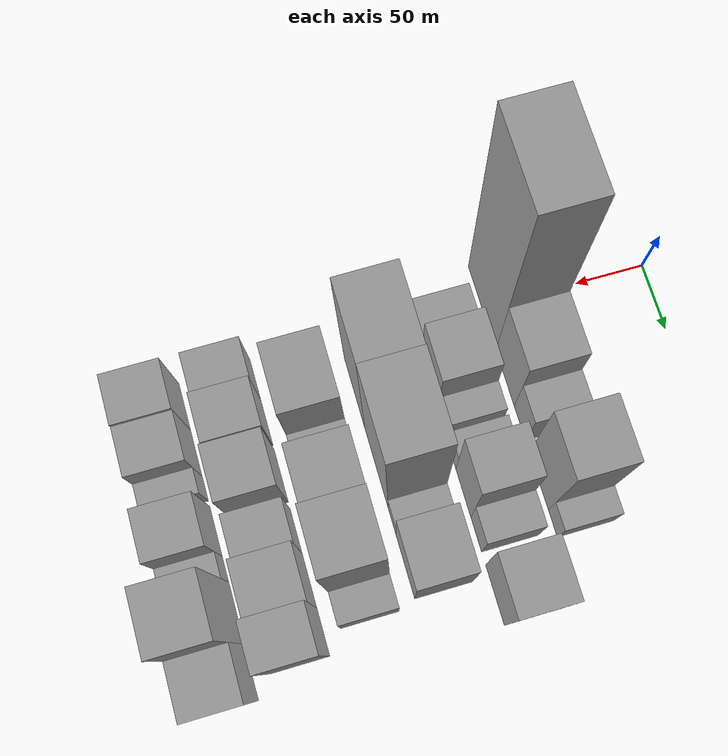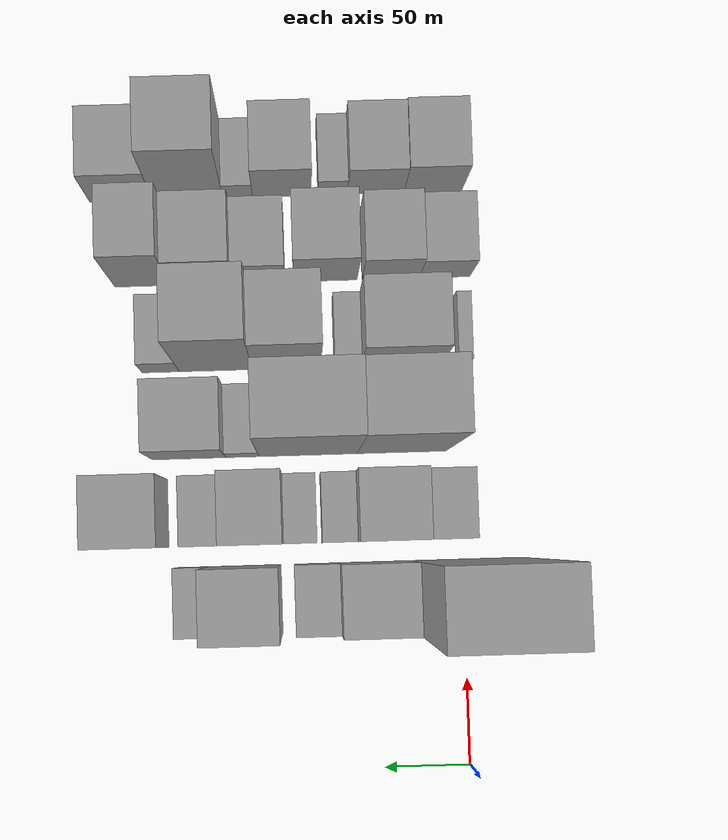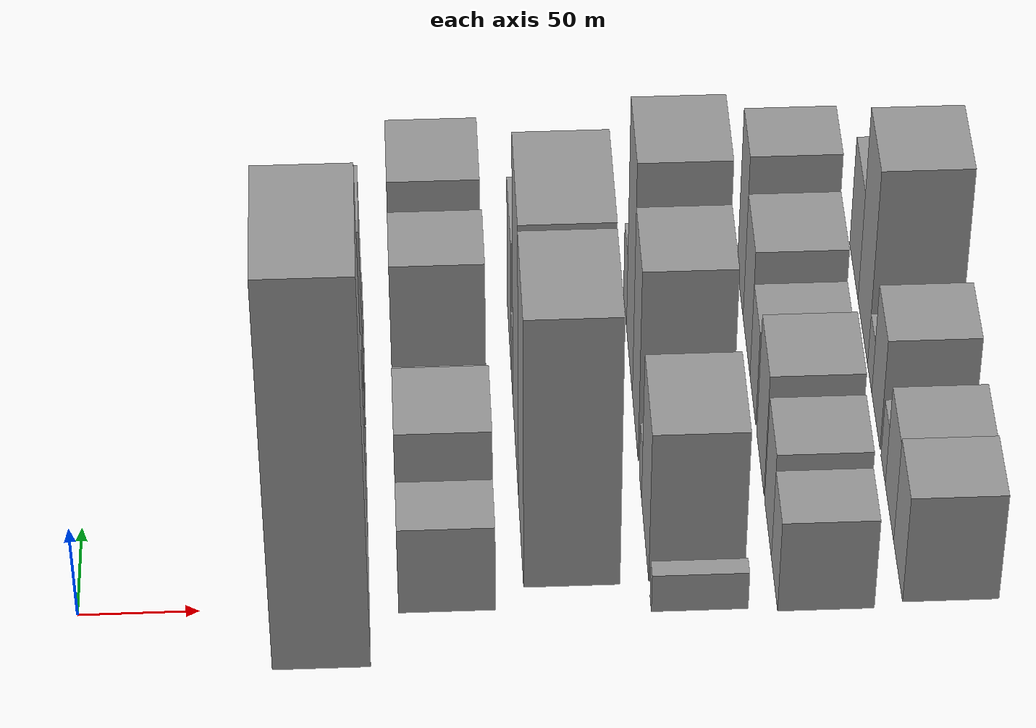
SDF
<sdf version="1.6">
 <world name="default">
  <model name="building_23">
   <static>1</static>
   <pose>100.0000 -1.6300 0 0.000000 0.000000 0.000000</pose>
   <link name="link">
    <pose>0 0 106.50 0 0 0</pose>
    <collision name="collision"><geometry><box><size>40.0000 65.4329 213.0000</size></box></geometry></collision>
    <visual name="visual">
     <cast_shadows>0</cast_shadows>
     <geometry><box><size>40.0000 65.4329 213.0000</size></box></geometry>
     <material>
      <script>
       <uri>model://grey_wall/materials/scripts</uri>
       <uri>model://grey_wall/materials/textures</uri>
       <name>vrc/grey_wall</name>
      </script>
     </material>
    </visual>
   </link>
  </model>
  <model name="building_24">
   <static>1</static>
   <pose>100.0000 52.3423 0 0.000000 0.000000 0.000000</pose>
   <link name="link">
    <pose>0 0 42.00 0 0 0</pose>
    <collision name="collision"><geometry><box><size>40.0000 42.5116 84.0000</size></box></geometry></collision>
    <visual name="visual">
     <cast_shadows>0</cast_shadows>
     <geometry><box><size>40.0000 42.5116 84.0000</size></box></geometry>
     <material>
      <script>
       <uri>model://grey_wall/materials/scripts</uri>
       <uri>model://grey_wall/materials/textures</uri>
       <name>vrc/grey_wall</name>
      </script>
     </material>
    </visual>
   </link>
  </model>
  <model name="building_25">
   <static>1</static>
   <pose>100.0000 86.3968 0 0.000000 0.000000 0.000000</pose>
   <link name="link">
    <pose>0 0 25.50 0 0 0</pose>
    <collision name="collision"><geometry><box><size>40.0000 25.5975 51.0000</size></box></geometry></collision>
    <visual name="visual">
     <cast_shadows>0</cast_shadows>
     <geometry><box><size>40.0000 25.5975 51.0000</size></box></geometry>
     <material>
      <script>
       <uri>model://grey_wall/materials/scripts</uri>
       <uri>model://grey_wall/materials/textures</uri>
       <name>vrc/grey_wall</name>
      </script>
     </material>
    </visual>
   </link>
  </model>
  <model name="building_26">
   <static>1</static>
   <pose>100.0000 128.4170 0 0.000000 0.000000 0.000000</pose>
   <link name="link">
    <pose>0 0 55.50 0 0 0</pose>
    <collision name="collision"><geometry><box><size>40.0000 42.4429 111.0000</size></box></geometry></collision>
    <visual name="visual">
     <cast_shadows>0</cast_shadows>
     <geometry><box><size>40.0000 42.4429 111.0000</size></box></geometry>
     <material>
      <script>
       <uri>model://grey_wall/materials/scripts</uri>
       <uri>model://grey_wall/materials/textures</uri>
       <name>vrc/grey_wall</name>
      </script>
     </material>
    </visual>
   </link>
  </model>
  <model name="building_27">
   <static>1</static>
   <pose>100.0000 159.2440 0 0.000000 0.000000 0.000000</pose>
   <link name="link">
    <pose>0 0 16.50 0 0 0</pose>
    <collision name="collision"><geometry><box><size>40.0000 19.2112 33.0000</size></box></geometry></collision>
    <visual name="visual">
     <cast_shadows>0</cast_shadows>
     <geometry><box><size>40.0000 19.2112 33.0000</size></box></geometry>
     <material>
      <script>
       <uri>model://grey_wall/materials/scripts</uri>
       <uri>model://grey_wall/materials/textures</uri>
       <name>vrc/grey_wall</name>
      </script>
     </material>
    </visual>
   </link>
  </model>
  <model name="building_68">
   <static>1</static>
   <pose>152.0000 9.2155 0 0.000000 0.000000 0.000000</pose>
   <link name="link">
    <pose>0 0 24.00 0 0 0</pose>
    <collision name="collision"><geometry><box><size>40.0000 27.9302 48.0000</size></box></geometry></collision>
    <visual name="visual">
     <cast_shadows>0</cast_shadows>
     <geometry><box><size>40.0000 27.9302 48.0000</size></box></geometry>
     <material>
      <script>
       <uri>model://grey_wall/materials/scripts</uri>
       <uri>model://grey_wall/materials/textures</uri>
       <name>vrc/grey_wall</name>
      </script>
     </material>
    </visual>
   </link>
  </model>
  <model name="building_69">
   <static>1</static>
   <pose>152.0000 42.9285 0 0.000000 0.000000 0.000000</pose>
   <link name="link">
    <pose>0 0 37.50 0 0 0</pose>
    <collision name="collision"><geometry><box><size>40.0000 39.4956 75.0000</size></box></geometry></collision>
    <visual name="visual">
     <cast_shadows>0</cast_shadows>
     <geometry><box><size>40.0000 39.4956 75.0000</size></box></geometry>
     <material>
      <script>
       <uri>model://grey_wall/materials/scripts</uri>
       <uri>model://grey_wall/materials/textures</uri>
       <name>vrc/grey_wall</name>
      </script>
     </material>
    </visual>
   </link>
  </model>
  <model name="building_70">
   <static>1</static>
   <pose>152.0000 72.7786 0 0.000000 0.000000 0.000000</pose>
   <link name="link">
    <pose>0 0 19.50 0 0 0</pose>
    <collision name="collision"><geometry><box><size>40.0000 20.2046 39.0000</size></box></geometry></collision>
    <visual name="visual">
     <cast_shadows>0</cast_shadows>
     <geometry><box><size>40.0000 20.2046 39.0000</size></box></geometry>
     <material>
      <script>
       <uri>model://grey_wall/materials/scripts</uri>
       <uri>model://grey_wall/materials/textures</uri>
       <name>vrc/grey_wall</name>
      </script>
     </material>
    </visual>
   </link>
  </model>
  <model name="building_71">
   <static>1</static>
   <pose>152.0000 95.4151 0 0.000000 0.000000 0.000000</pose>
   <link name="link">
    <pose>0 0 18.00 0 0 0</pose>
    <collision name="collision"><geometry><box><size>40.0000 19.0684 36.0000</size></box></geometry></collision>
    <visual name="visual">
     <cast_shadows>0</cast_shadows>
     <geometry><box><size>40.0000 19.0684 36.0000</size></box></geometry>
     <material>
      <script>
       <uri>model://grey_wall/materials/scripts</uri>
       <uri>model://grey_wall/materials/textures</uri>
       <name>vrc/grey_wall</name>
      </script>
     </material>
    </visual>
   </link>
  </model>
  <model name="building_72">
   <static>1</static>
   <pose>152.0000 122.2607 0 0.000000 0.000000 0.000000</pose>
   <link name="link">
    <pose>0 0 46.50 0 0 0</pose>
    <collision name="collision"><geometry><box><size>40.0000 34.6228 93.0000</size></box></geometry></collision>
    <visual name="visual">
     <cast_shadows>0</cast_shadows>
     <geometry><box><size>40.0000 34.6228 93.0000</size></box></geometry>
     <material>
      <script>
       <uri>model://grey_wall/materials/scripts</uri>
       <uri>model://grey_wall/materials/textures</uri>
       <name>vrc/grey_wall</name>
      </script>
     </material>
    </visual>
   </link>
  </model>
  <model name="building_73">
   <static>1</static>
   <pose>152.0000 151.7682 0 0.000000 0.000000 0.000000</pose>
   <link name="link">
    <pose>0 0 22.50 0 0 0</pose>
    <collision name="collision"><geometry><box><size>40.0000 24.3922 45.0000</size></box></geometry></collision>
    <visual name="visual">
     <cast_shadows>0</cast_shadows>
     <geometry><box><size>40.0000 24.3922 45.0000</size></box></geometry>
     <material>
      <script>
       <uri>model://grey_wall/materials/scripts</uri>
       <uri>model://grey_wall/materials/textures</uri>
       <name>vrc/grey_wall</name>
      </script>
     </material>
    </visual>
   </link>
  </model>
  <model name="building_74">
   <static>1</static>
   <pose>152.0000 193.7684 0 0.000000 0.000000 0.000000</pose>
   <link name="link">
    <pose>0 0 40.50 0 0 0</pose>
    <collision name="collision"><geometry><box><size>40.0000 41.6083 81.0000</size></box></geometry></collision>
    <visual name="visual">
     <cast_shadows>0</cast_shadows>
     <geometry><box><size>40.0000 41.6083 81.0000</size></box></geometry>
     <material>
      <script>
       <uri>model://grey_wall/materials/scripts</uri>
       <uri>model://grey_wall/materials/textures</uri>
       <name>vrc/grey_wall</name>
      </script>
     </material>
    </visual>
   </link>
  </model>
  <model name="building_116">
   <static>1</static>
   <pose>204.0000 33.9878 0 0.000000 0.000000 0.000000</pose>
   <link name="link">
    <pose>0 0 75.00 0 0 0</pose>
    <collision name="collision"><geometry><box><size>40.0000 52.7865 150.0000</size></box></geometry></collision>
    <visual name="visual">
     <cast_shadows>0</cast_shadows>
     <geometry><box><size>40.0000 52.7865 150.0000</size></box></geometry>
     <material>
      <script>
       <uri>model://grey_wall/materials/scripts</uri>
       <uri>model://grey_wall/materials/textures</uri>
       <name>vrc/grey_wall</name>
      </script>
     </material>
    </visual>
   </link>
  </model>
  <model name="building_117">
   <static>1</static>
   <pose>204.0000 89.3117 0 0.000000 0.000000 0.000000</pose>
   <link name="link">
    <pose>0 0 76.50 0 0 0</pose>
    <collision name="collision"><geometry><box><size>40.0000 57.8612 153.0000</size></box></geometry></collision>
    <visual name="visual">
     <cast_shadows>0</cast_shadows>
     <geometry><box><size>40.0000 57.8612 153.0000</size></box></geometry>
     <material>
      <script>
       <uri>model://grey_wall/materials/scripts</uri>
       <uri>model://grey_wall/materials/textures</uri>
       <name>vrc/grey_wall</name>
      </script>
     </material>
    </visual>
   </link>
  </model>
  <model name="building_118">
   <static>1</static>
   <pose>204.0000 127.9586 0 0.000000 0.000000 0.000000</pose>
   <link name="link">
    <pose>0 0 18.00 0 0 0</pose>
    <collision name="collision"><geometry><box><size>40.0000 19.4326 36.0000</size></box></geometry></collision>
    <visual name="visual">
     <cast_shadows>0</cast_shadows>
     <geometry><box><size>40.0000 19.4326 36.0000</size></box></geometry>
     <material>
      <script>
       <uri>model://grey_wall/materials/scripts</uri>
       <uri>model://grey_wall/materials/textures</uri>
       <name>vrc/grey_wall</name>
      </script>
     </material>
    </visual>
   </link>
  </model>
  <model name="building_119">
   <static>1</static>
   <pose>204.0000 159.4800 0 0.000000 0.000000 0.000000</pose>
   <link name="link">
    <pose>0 0 37.50 0 0 0</pose>
    <collision name="collision"><geometry><box><size>40.0000 43.6103 75.0000</size></box></geometry></collision>
    <visual name="visual">
     <cast_shadows>0</cast_shadows>
     <geometry><box><size>40.0000 43.6103 75.0000</size></box></geometry>
     <material>
      <script>
       <uri>model://grey_wall/materials/scripts</uri>
       <uri>model://grey_wall/materials/textures</uri>
       <name>vrc/grey_wall</name>
      </script>
     </material>
    </visual>
   </link>
  </model>
  <model name="building_160">
   <static>1</static>
   <pose>256.0000 -4.2882 0 0.000000 0.000000 0.000000</pose>
   <link name="link">
    <pose>0 0 10.50 0 0 0</pose>
    <collision name="collision"><geometry><box><size>40.0000 8.5441 21.0000</size></box></geometry></collision>
    <visual name="visual">
     <cast_shadows>0</cast_shadows>
     <geometry><box><size>40.0000 8.5441 21.0000</size></box></geometry>
     <material>
      <script>
       <uri>model://grey_wall/materials/scripts</uri>
       <uri>model://grey_wall/materials/textures</uri>
       <name>vrc/grey_wall</name>
      </script>
     </material>
    </visual>
   </link>
  </model>
  <model name="building_161">
   <static>1</static>
   <pose>256.0000 32.8199 0 0.000000 0.000000 0.000000</pose>
   <link name="link">
    <pose>0 0 42.00 0 0 0</pose>
    <collision name="collision"><geometry><box><size>40.0000 47.6721 84.0000</size></box></geometry></collision>
    <visual name="visual">
     <cast_shadows>0</cast_shadows>
     <geometry><box><size>40.0000 47.6721 84.0000</size></box></geometry>
     <material>
      <script>
       <uri>model://grey_wall/materials/scripts</uri>
       <uri>model://grey_wall/materials/textures</uri>
       <name>vrc/grey_wall</name>
      </script>
     </material>
    </visual>
   </link>
  </model>
  <model name="building_162">
   <static>1</static>
   <pose>256.0000 64.5256 0 0.000000 0.000000 0.000000</pose>
   <link name="link">
    <pose>0 0 15.00 0 0 0</pose>
    <collision name="collision"><geometry><box><size>40.0000 15.7392 30.0000</size></box></geometry></collision>
    <visual name="visual">
     <cast_shadows>0</cast_shadows>
     <geometry><box><size>40.0000 15.7392 30.0000</size></box></geometry>
     <material>
      <script>
       <uri>model://grey_wall/materials/scripts</uri>
       <uri>model://grey_wall/materials/textures</uri>
       <name>vrc/grey_wall</name>
      </script>
     </material>
    </visual>
   </link>
  </model>
  <model name="building_163">
   <static>1</static>
   <pose>256.0000 100.6425 0 0.000000 0.000000 0.000000</pose>
   <link name="link">
    <pose>0 0 54.00 0 0 0</pose>
    <collision name="collision"><geometry><box><size>40.0000 40.4947 108.0000</size></box></geometry></collision>
    <visual name="visual">
     <cast_shadows>0</cast_shadows>
     <geometry><box><size>40.0000 40.4947 108.0000</size></box></geometry>
     <material>
      <script>
       <uri>model://grey_wall/materials/scripts</uri>
       <uri>model://grey_wall/materials/textures</uri>
       <name>vrc/grey_wall</name>
      </script>
     </material>
    </visual>
   </link>
  </model>
  <model name="building_164">
   <static>1</static>
   <pose>256.0000 142.4848 0 0.000000 0.000000 0.000000</pose>
   <link name="link">
    <pose>0 0 66.00 0 0 0</pose>
    <collision name="collision"><geometry><box><size>40.0000 43.1898 132.0000</size></box></geometry></collision>
    <visual name="visual">
     <cast_shadows>0</cast_shadows>
     <geometry><box><size>40.0000 43.1898 132.0000</size></box></geometry>
     <material>
      <script>
       <uri>model://grey_wall/materials/scripts</uri>
       <uri>model://grey_wall/materials/textures</uri>
       <name>vrc/grey_wall</name>
      </script>
     </material>
    </visual>
   </link>
  </model>
  <model name="building_165">
   <static>1</static>
   <pose>256.0000 175.1293 0 0.000000 0.000000 0.000000</pose>
   <link name="link">
    <pose>0 0 21.00 0 0 0</pose>
    <collision name="collision"><geometry><box><size>40.0000 22.0991 42.0000</size></box></geometry></collision>
    <visual name="visual">
     <cast_shadows>0</cast_shadows>
     <geometry><box><size>40.0000 22.0991 42.0000</size></box></geometry>
     <material>
      <script>
       <uri>model://grey_wall/materials/scripts</uri>
       <uri>model://grey_wall/materials/textures</uri>
       <name>vrc/grey_wall</name>
      </script>
     </material>
    </visual>
   </link>
  </model>
  <model name="building_214">
   <static>1</static>
   <pose>308.0000 4.7092 0 0.000000 0.000000 0.000000</pose>
   <link name="link">
    <pose>0 0 25.50 0 0 0</pose>
    <collision name="collision"><geometry><box><size>40.0000 30.4327 51.0000</size></box></geometry></collision>
    <visual name="visual">
     <cast_shadows>0</cast_shadows>
     <geometry><box><size>40.0000 30.4327 51.0000</size></box></geometry>
     <material>
      <script>
       <uri>model://grey_wall/materials/scripts</uri>
       <uri>model://grey_wall/materials/textures</uri>
       <name>vrc/grey_wall</name>
      </script>
     </material>
    </visual>
   </link>
  </model>
  <model name="building_215">
   <static>1</static>
   <pose>308.0000 36.9618 0 0.000000 0.000000 0.000000</pose>
   <link name="link">
    <pose>0 0 30.00 0 0 0</pose>
    <collision name="collision"><geometry><box><size>40.0000 34.0726 60.0000</size></box></geometry></collision>
    <visual name="visual">
     <cast_shadows>0</cast_shadows>
     <geometry><box><size>40.0000 34.0726 60.0000</size></box></geometry>
     <material>
      <script>
       <uri>model://grey_wall/materials/scripts</uri>
       <uri>model://grey_wall/materials/textures</uri>
       <name>vrc/grey_wall</name>
      </script>
     </material>
    </visual>
   </link>
  </model>
  <model name="building_216">
   <static>1</static>
   <pose>308.0000 76.0015 0 0.000000 0.000000 0.000000</pose>
   <link name="link">
    <pose>0 0 34.50 0 0 0</pose>
    <collision name="collision"><geometry><box><size>40.0000 38.0069 69.0000</size></box></geometry></collision>
    <visual name="visual">
     <cast_shadows>0</cast_shadows>
     <geometry><box><size>40.0000 38.0069 69.0000</size></box></geometry>
     <material>
      <script>
       <uri>model://grey_wall/materials/scripts</uri>
       <uri>model://grey_wall/materials/textures</uri>
       <name>vrc/grey_wall</name>
      </script>
     </material>
    </visual>
   </link>
  </model>
  <model name="building_217">
   <static>1</static>
   <pose>308.0000 115.4123 0 0.000000 0.000000 0.000000</pose>
   <link name="link">
    <pose>0 0 27.00 0 0 0</pose>
    <collision name="collision"><geometry><box><size>40.0000 30.8146 54.0000</size></box></geometry></collision>
    <visual name="visual">
     <cast_shadows>0</cast_shadows>
     <geometry><box><size>40.0000 30.8146 54.0000</size></box></geometry>
     <material>
      <script>
       <uri>model://grey_wall/materials/scripts</uri>
       <uri>model://grey_wall/materials/textures</uri>
       <name>vrc/grey_wall</name>
      </script>
     </material>
    </visual>
   </link>
  </model>
  <model name="building_218">
   <static>1</static>
   <pose>308.0000 149.8188 0 0.000000 0.000000 0.000000</pose>
   <link name="link">
    <pose>0 0 36.00 0 0 0</pose>
    <collision name="collision"><geometry><box><size>40.0000 37.9983 72.0000</size></box></geometry></collision>
    <visual name="visual">
     <cast_shadows>0</cast_shadows>
     <geometry><box><size>40.0000 37.9983 72.0000</size></box></geometry>
     <material>
      <script>
       <uri>model://grey_wall/materials/scripts</uri>
       <uri>model://grey_wall/materials/textures</uri>
       <name>vrc/grey_wall</name>
      </script>
     </material>
    </visual>
   </link>
  </model>
  <model name="building_219">
   <static>1</static>
   <pose>308.0000 185.0864 0 0.000000 0.000000 0.000000</pose>
   <link name="link">
    <pose>0 0 46.50 0 0 0</pose>
    <collision name="collision"><geometry><box><size>40.0000 32.5370 93.0000</size></box></geometry></collision>
    <visual name="visual">
     <cast_shadows>0</cast_shadows>
     <geometry><box><size>40.0000 32.5370 93.0000</size></box></geometry>
     <material>
      <script>
       <uri>model://grey_wall/materials/scripts</uri>
       <uri>model://grey_wall/materials/textures</uri>
       <name>vrc/grey_wall</name>
      </script>
     </material>
    </visual>
   </link>
  </model>
  <model name="building_261">
   <static>1</static>
   <pose>360.0000 9.8952 0 0.000000 0.000000 0.000000</pose>
   <link name="link">
    <pose>0 0 30.00 0 0 0</pose>
    <collision name="collision"><geometry><box><size>40.0000 34.7975 60.0000</size></box></geometry></collision>
    <visual name="visual">
     <cast_shadows>0</cast_shadows>
     <geometry><box><size>40.0000 34.7975 60.0000</size></box></geometry>
     <material>
      <script>
       <uri>model://grey_wall/materials/scripts</uri>
       <uri>model://grey_wall/materials/textures</uri>
       <name>vrc/grey_wall</name>
      </script>
     </material>
    </visual>
   </link>
  </model>
  <model name="building_262">
   <static>1</static>
   <pose>360.0000 44.2582 0 0.000000 0.000000 0.000000</pose>
   <link name="link">
    <pose>0 0 28.50 0 0 0</pose>
    <collision name="collision"><geometry><box><size>40.0000 33.9285 57.0000</size></box></geometry></collision>
    <visual name="visual">
     <cast_shadows>0</cast_shadows>
     <geometry><box><size>40.0000 33.9285 57.0000</size></box></geometry>
     <material>
      <script>
       <uri>model://grey_wall/materials/scripts</uri>
       <uri>model://grey_wall/materials/textures</uri>
       <name>vrc/grey_wall</name>
      </script>
     </material>
    </visual>
   </link>
  </model>
  <model name="building_263">
   <static>1</static>
   <pose>360.0000 70.0205 0 0.000000 0.000000 0.000000</pose>
   <link name="link">
    <pose>0 0 16.50 0 0 0</pose>
    <collision name="collision"><geometry><box><size>40.0000 17.5962 33.0000</size></box></geometry></collision>
    <visual name="visual">
     <cast_shadows>0</cast_shadows>
     <geometry><box><size>40.0000 17.5962 33.0000</size></box></geometry>
     <material>
      <script>
       <uri>model://grey_wall/materials/scripts</uri>
       <uri>model://grey_wall/materials/textures</uri>
       <name>vrc/grey_wall</name>
      </script>
     </material>
    </visual>
   </link>
  </model>
  <model name="building_264">
   <static>1</static>
   <pose>360.0000 100.3466 0 0.000000 0.000000 0.000000</pose>
   <link name="link">
    <pose>0 0 31.50 0 0 0</pose>
    <collision name="collision"><geometry><box><size>40.0000 35.0559 63.0000</size></box></geometry></collision>
    <visual name="visual">
     <cast_shadows>0</cast_shadows>
     <geometry><box><size>40.0000 35.0559 63.0000</size></box></geometry>
     <material>
      <script>
       <uri>model://grey_wall/materials/scripts</uri>
       <uri>model://grey_wall/materials/textures</uri>
       <name>vrc/grey_wall</name>
      </script>
     </material>
    </visual>
   </link>
  </model>
  <model name="building_265">
   <static>1</static>
   <pose>360.0000 126.8002 0 0.000000 0.000000 0.000000</pose>
   <link name="link">
    <pose>0 0 15.00 0 0 0</pose>
    <collision name="collision"><geometry><box><size>40.0000 17.8514 30.0000</size></box></geometry></collision>
    <visual name="visual">
     <cast_shadows>0</cast_shadows>
     <geometry><box><size>40.0000 17.8514 30.0000</size></box></geometry>
     <material>
      <script>
       <uri>model://grey_wall/materials/scripts</uri>
       <uri>model://grey_wall/materials/textures</uri>
       <name>vrc/grey_wall</name>
      </script>
     </material>
    </visual>
   </link>
  </model>
  <model name="building_266">
   <static>1</static>
   <pose>360.0000 156.7765 0 0.000000 0.000000 0.000000</pose>
   <link name="link">
    <pose>0 0 55.50 0 0 0</pose>
    <collision name="collision"><geometry><box><size>40.0000 42.1011 111.0000</size></box></geometry></collision>
    <visual name="visual">
     <cast_shadows>0</cast_shadows>
     <geometry><box><size>40.0000 42.1011 111.0000</size></box></geometry>
     <material>
      <script>
       <uri>model://grey_wall/materials/scripts</uri>
       <uri>model://grey_wall/materials/textures</uri>
       <name>vrc/grey_wall</name>
      </script>
     </material>
    </visual>
   </link>
  </model>
  <model name="building_267">
   <static>1</static>
   <pose>360.0000 196.6860 0 0.000000 0.000000 0.000000</pose>
   <link name="link">
    <pose>0 0 31.50 0 0 0</pose>
    <collision name="collision"><geometry><box><size>40.0000 37.7181 63.0000</size></box></geometry></collision>
    <visual name="visual">
     <cast_shadows>0</cast_shadows>
     <geometry><box><size>40.0000 37.7181 63.0000</size></box></geometry>
     <material>
      <script>
       <uri>model://grey_wall/materials/scripts</uri>
       <uri>model://grey_wall/materials/textures</uri>
       <name>vrc/grey_wall</name>
      </script>
     </material>
    </visual>
   </link>
  </model>
 </world>
</sdf>
